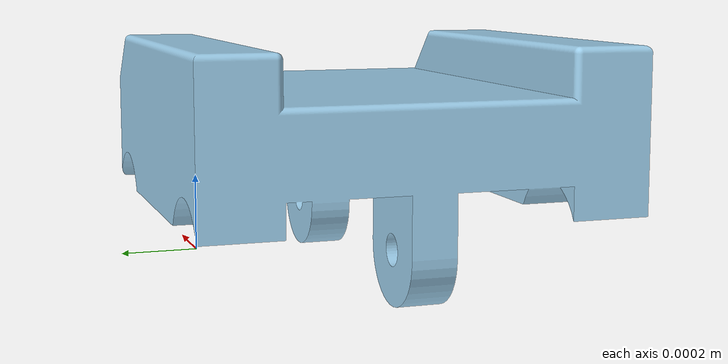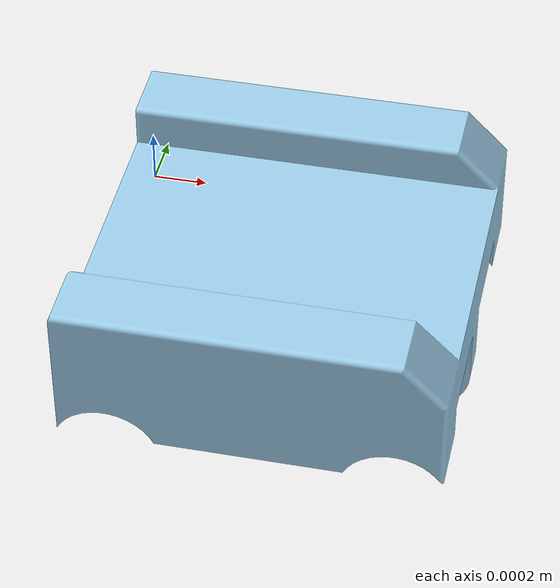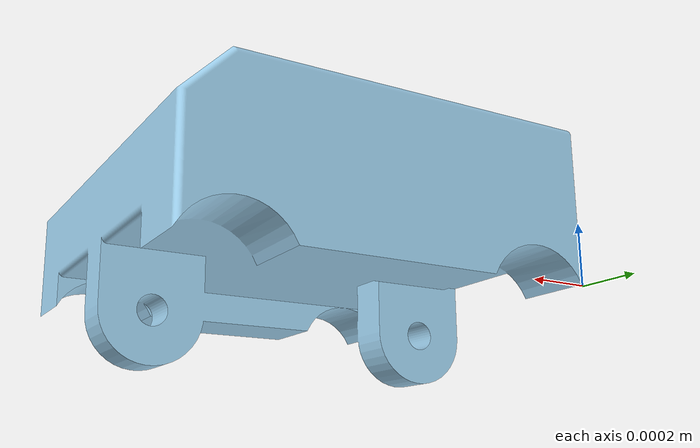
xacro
<?xml version="1.0"?>
<robot name="robot"
  xmlns:xacro="http://www.ros.org/wiki/xacro">

  <xacro:include filename="$(find robot_description)/urdf/macros/link_geometry.urdf.xacro" />
  <xacro:include filename="$(find robot_description)/urdf/macros/parts/base_robot.urdf.xacro" />
  <xacro:include filename="$(find robot_description)/urdf/macros/properties_robot.urdf.xacro" />

  <!-- link: base_footprint -->
  <link name='base_footprint'/>

  <!-- Robot -->

  <!-- Base -->
  <xacro:base name="base_link" parent="base_footprint">
      <origin xyz="0 0 0" rpy="0 0 0"/>
  </xacro:base>

</robot>

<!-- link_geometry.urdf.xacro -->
<robot xmlns:xacro="http://ros.org/wiki/xacro">

  <!-- box -->
  <xacro:macro name="create_box" params="m x y z *origin use_visual:=false">
    <xacro:if value="${use_visual}">
      <visual>
        <xacro:insert_block name="origin"/>
        <geometry>
          <box size="${x} ${y} ${z}"/>
        </geometry>
      </visual>
    </xacro:if>
    <collision>
      <xacro:insert_block name="origin"/>
      <geometry>
        <box size="${x} ${y} ${z}"/>
      </geometry>
    </collision>
    <inertial>
      <mass value="${m}"/>
      <inertia
        ixx="${1/12*m*(y*y+z*z)}" ixy="0.0" ixz="0.0"
        iyy="${1/12*m*(x*x+z*z)}" iyz="0.0"
        izz="${1/12*m*(x*x+y*y)}"/>
    </inertial>
  </xacro:macro>

  <!-- cylinder -->
  <xacro:macro name="create_cylinder" params="m r l *origin use_visual:=false">
    <xacro:if value="${use_visual}">
      <visual>
        <xacro:insert_block name="origin"/>
        <geometry>
          <cylinder radius="${r}" length="${l}"/>
        </geometry>
      </visual>
    </xacro:if>
    <collision>
      <xacro:insert_block name="origin"/>
      <geometry>
        <cylinder radius="${r}" length="${l}"/>
      </geometry>
    </collision>
    <inertial>
      <mass value="${m}"/>
      <inertia
        ixx="${1/12*m*(3*r*r+l*l)}" ixy="0.0" ixz="0.0"
        iyy="${1/12*m*(3*r*r+l*l)}" iyz="0.0"
        izz="${1/2*(m*r*r)}"/>
    </inertial>
  </xacro:macro>

  <!-- sphere -->
  <xacro:macro name="create_sphere" params="m r *origin use_visual:=false">
    <xacro:if value="${use_visual}">
      <visual>
        <xacro:insert_block name="origin" />
        <geometry>
          <sphere radius="${r}"/>
        </geometry>
      </visual>
    </xacro:if>
    <collision>
      <xacro:insert_block name="origin" />
      <geometry>
        <sphere radius="${r}"/>
      </geometry>
    </collision>
    <inertial>
      <mass value="${m}"/>
      <inertia
        ixx="${(2/5)*m*r*r}" ixy="0.0" ixz="0.0"
        iyy="${(2/5)*m*r*r}" iyz="0.0"
        izz="${(2/5)*m*r*r}"/>
    </inertial>
  </xacro:macro>

</robot>

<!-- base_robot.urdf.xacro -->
<robot xmlns:xacro="http://ros.org/wiki/xacro">

  <xacro:macro name="base" params="name parent *origin">

    <!-- ########## JOINTS ########## -->

     <!-- joint: base_footprint -> base -->
    <joint name="${parent}_to_${name}" type="fixed">
      <xacro:insert_block name="origin" />
      <parent link="${parent}"/>
      <child link="${name}"/>
    </joint>

    <!-- ########## LINKS ########### -->

    <!-- ########## BASE ############ -->

    <!-- link: base -->
    <link name="${name}">
      <!-- plat -->
      <collision>
        <origin xyz="0.0 0.0 0" rpy="0 0 0" />
        <geometry>
          <mesh filename="package://robot_description/meshes/base.dae" scale="${robot_scale} ${robot_scale} ${robot_scale}"/>
        </geometry>
      </collision>
      <visual>
        <origin xyz="0.0 0.0 0" rpy="0 0 0" />
        <geometry>
          <mesh filename="package://robot_description/meshes/base.dae" scale="${robot_scale} ${robot_scale} ${robot_scale}"/>
        </geometry>
      </visual>
      <!-- power_source -->
      <xacro:create_box m="2" x="0.1" y="0.2" z="0.05">
        <origin xyz="0 0 0.05" rpy="0 0 0"/>
      </xacro:create_box>

    </link>

  </xacro:macro>

  <xacro:macro name="gazebo_base" params="reference robotBaseFrame ">
    <gazebo>

      <plugin name="${reference}_controller" filename="libgazebo_ros_diff_drive.so">

        <alwaysOn>true</alwaysOn>

        <commandTopic>cmd_vel</commandTopic>
        <updateRate>20</updateRate>

        <odometryTopic>odom</odometryTopic>
        <odometryFrame>odom</odometryFrame>
        <odometryRate>100.0</odometryRate>

        <robotBaseFrame>${robotBaseFrame}</robotBaseFrame>

        <odometrySource>world</odometrySource>
        <publishOdomTF>true</publishOdomTF>
        <publishWheelTF>false</publishWheelTF>
        <publishTf>true</publishTf>
        <publishWheelJointState>true</publishWheelJointState>
        <legacyMode>false</legacyMode>
        <wheelAcceleration>1</wheelAcceleration>
        <rosDebugLevel>na</rosDebugLevel>

      </plugin>
    </gazebo>
  </xacro:macro>

</robot>

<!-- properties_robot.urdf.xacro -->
<robot xmlns:xacro="http://ros.org/wiki/xacro">

  <xacro:property name="PI"                       value="3.14159265" />
  <xacro:property name="robot_scale"              value="${1/1000}" />

  <xacro:property name="base_plat_mass"           value="10" />
  <xacro:property name="base_plat_size_x"         value="${556  * robot_scale}" />
  <xacro:property name="base_plat_size_y1"        value="${189  * robot_scale}" />
  <xacro:property name="base_plat_size_y2"        value="${456  * robot_scale}" />
  <xacro:property name="base_plat_size_z"         value="${233  * robot_scale}" />

  <xacro:property name="base_motor_mass"          value="1" />
  <xacro:property name="base_motor_diameter"      value="${50   * robot_scale}" />
  <xacro:property name="base_motor_lenght"        value="${135  * robot_scale}" />
  <xacro:property name="base_motor_gap"           value="${20   * robot_scale}" />

</robot>
